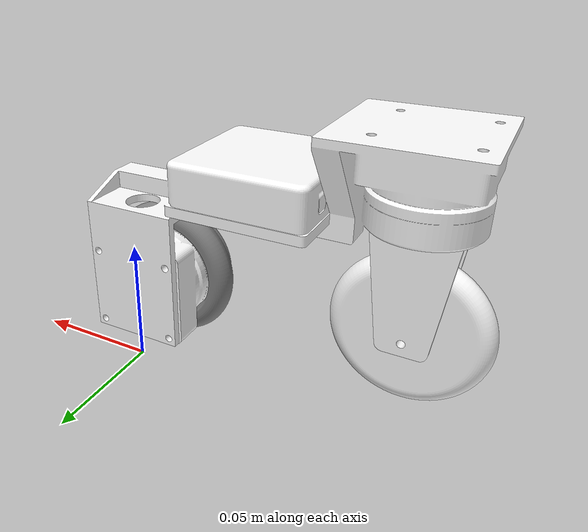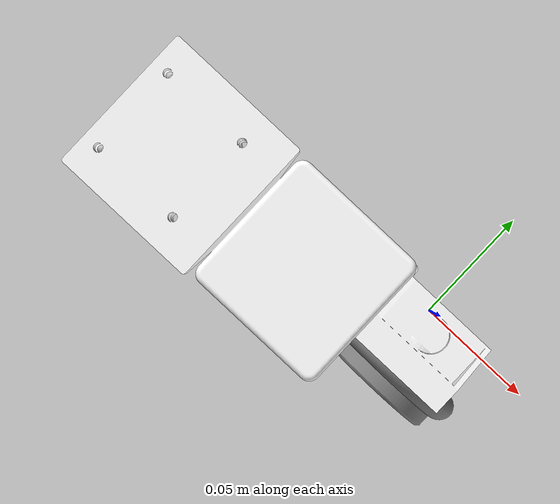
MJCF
<mujoco model="HBP_mjcf">
  <compiler angle="radian" meshdir="assets" autolimits="true" />

  <option timestep="0.001" iterations="30" cone="elliptic" impratio="100" />

  <default>
    <!-- textset -->
    <position inheritrange="0" timeconst="0.01"/>
    <geom friction="0.4" margin="0.001" condim="3"/>
    <!-- text�[text�Fgroup=0 -->
    <default class="collision">
      <geom group="0"/>
    </default>
    <!-- text�Fgroup=1(text) -->
    <default class="visual">
      <geom contype="0" conaffinity="0" group="1"/>
    </default>
  </default>

  <asset>
    <material name="metal" rgba=".9 .95 .95 1" />
    <material name="black" rgba="0 0 0 1" />
    <material name="white" rgba="1 1 1 1" />
    <material name="gray" rgba="0.671705 0.692426 0.774270 1" />

    <mesh name="body" file="body.obj" />
    <mesh name="tire_back" file="tire_back.obj" />
    <mesh name="tire_holder" file="tire_holder.obj" />
    <mesh name="tire_top" file="tire_top.obj" />
  </asset>

  <worldbody>
    <body name="body_obj" pos="0 0 0.0375">
      <freejoint />
      <geom class="visual" type="mesh" mesh="body" rgba="1.0 1.0 1.0 1.0" />
      <geom type="mesh" mesh="body" group="0" />
      <inertial pos="-0.050997 -0.017947 0.030732" mass="0.245161" diaginertia="2.267e-4 6.820e-4 5.311e-4" />

      <!-- tire_back -->
      <body name="tire_back" pos="0.0 -0.03 -0.0075">
        <joint name="tire_back_pitch" type="hinge" pos="0 0 0" axis="0 1 0" limited="false" armature="0.01" frictionloss="0.005" damping="0.001" />
        <inertial pos="0 0.002773 0" mass="0.0175" diaginertia="5.657063e-6 1.0383774e-5 5.657062e-6" />
        <geom class="visual" type="mesh" mesh="tire_back" />
        <geom type="mesh" mesh="tire_back" group="0" />
      </body>

      <!-- tire_holder -->
      <body name="tire_holder" pos="-0.105 -0.0205 0.0365">
        <joint name="tire_holder_yaw" type="hinge" pos="0 0 0" axis="0 0 1" range="-3.14159 3.14159" limited="true" margin="0.0035" armature="0.01" frictionloss="0.005" damping="0.001" />
        <inertial pos="-0 -0 -0.01725" mass="0.008584" diaginertia="2.66356e-6 2.280561e-6 1.309661e-6" />
        <geom class="visual" type="mesh" mesh="tire_holder" rgba="1.0 1.0 1.0 1.0"/>
        <geom type="mesh" mesh="tire_holder" group="0" />

        <!-- tire_top キャスター化-->
        <body name="tire_top" pos="0.0 -0.0055 -0.04">
          <joint name="tire_top_pitch" type="hinge" pos="0 0 0" axis="0 1 0" limited="false" armature="0.001" frictionloss="0.005" damping="0.0001" />
          <inertial pos="0 0.005508 0" mass="0.0185" diaginertia="6.513973e-6 1.2471945e-5 6.513973e-6" />
          <geom class="visual" type="mesh" mesh="tire_top" rgba="1.0 1.0 1.0 1.0" />
          <geom type="mesh" mesh="tire_top" group="0" />
        </body>
      </body>
    </body>
  </worldbody>

  <actuator>
    <position name="tire_back_actuator" joint="tire_back_pitch" gear="1" kp="100" kv="1" forcerange="-0.021 0.021" forcelimited="true"/>
    <position name="tire_holder_actuator" joint="tire_holder_yaw" gear="1" kp="100" kv="1" forcerange="-0.021 0.021" forcelimited="true"/>
  </actuator>

  <contact>
    <exclude body1="body_obj" body2="tire_back"/>
    <exclude body1="body_obj" body2="tire_holder"/>
    <exclude body1="tire_holder" body2="tire_top"/>
  </contact>

  <sensor>
    <!-- Add sensors here if needed -->
  </sensor>
</mujoco>
